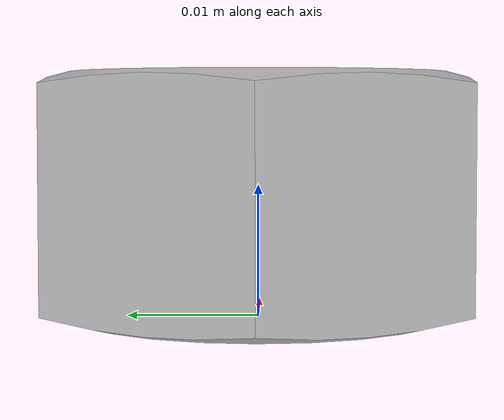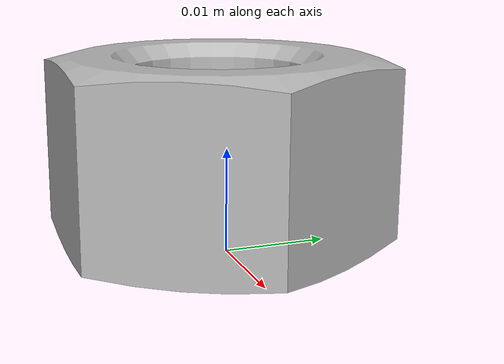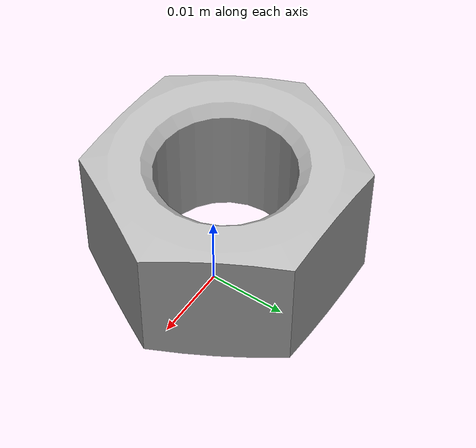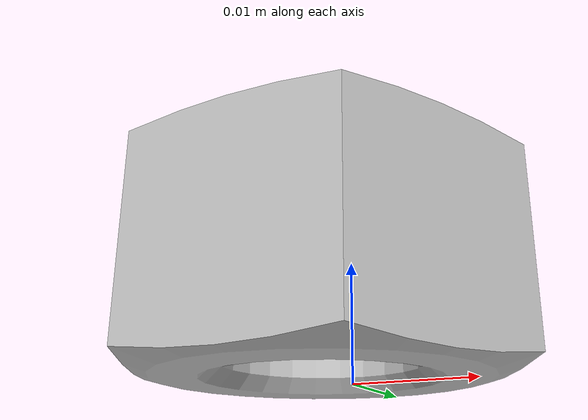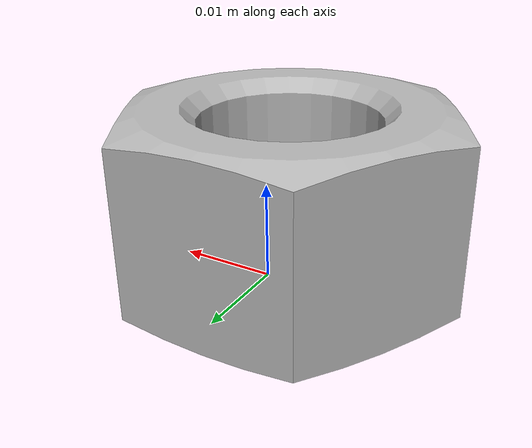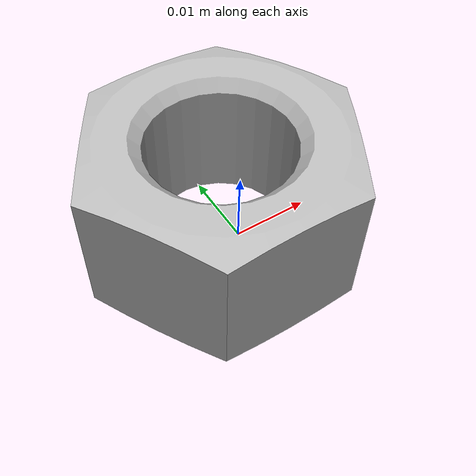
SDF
<?xml version="1.0" ?>
<sdf version="1.4">
  <model name="M20">
    <static>true</static>
    <link name="link">
      <pose>0 0 0 0 0 0</pose>
      <collision name="collision">
        <geometry>
          <mesh>
            <uri>model://M20/meshes/M20.dae</uri>
          </mesh>
        </geometry>
      </collision>
      <visual name="visual">
        <geometry>
          <mesh>
            <uri>model://M20/meshes/M20.dae</uri>
          </mesh>
        </geometry>
      </visual>
    </link>
  </model>
</sdf>
